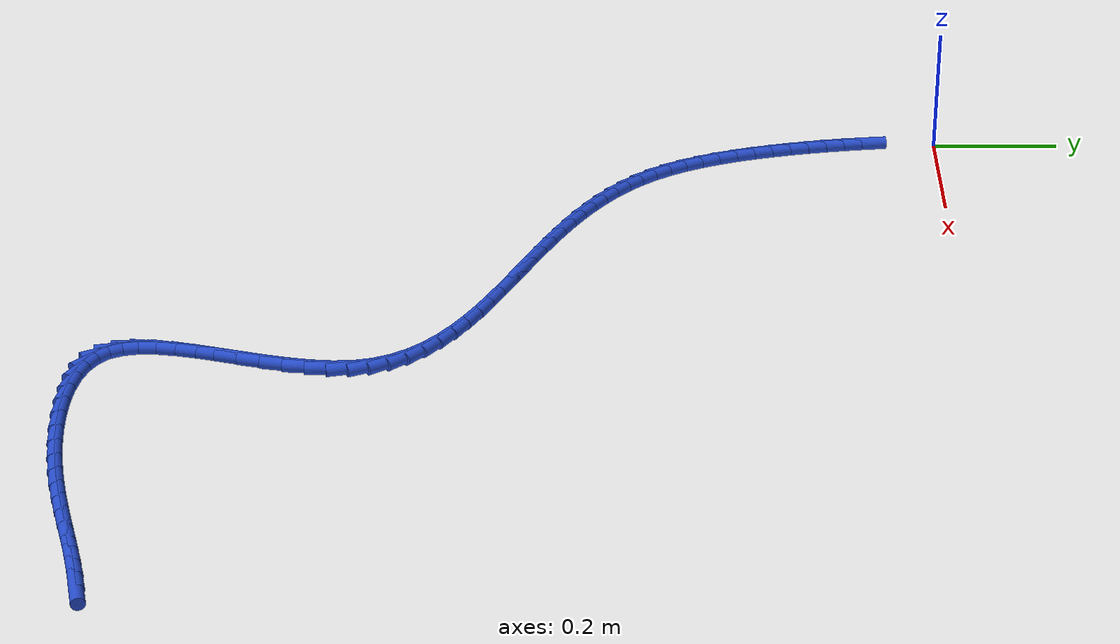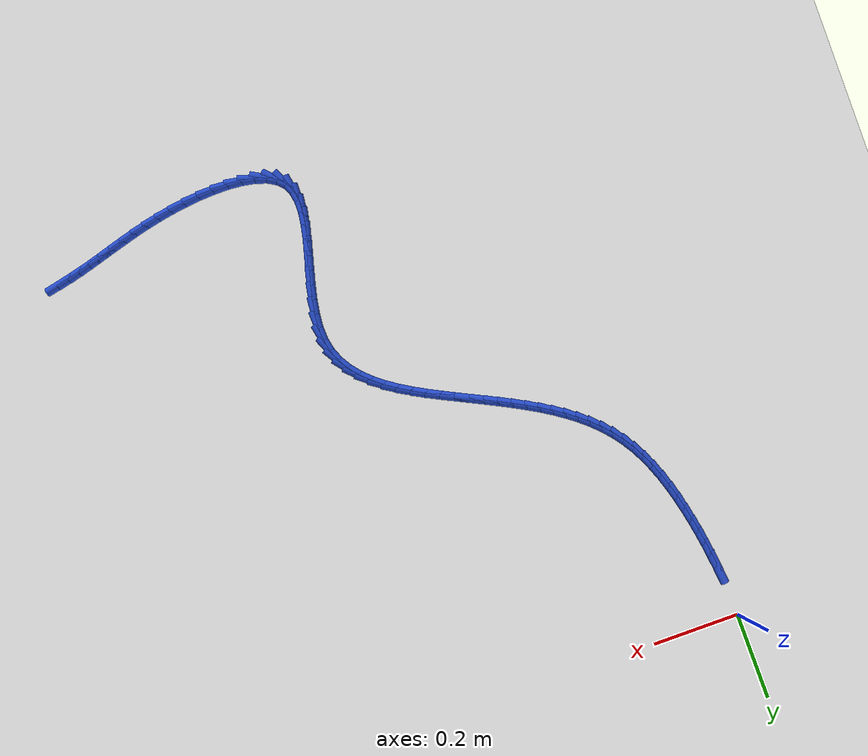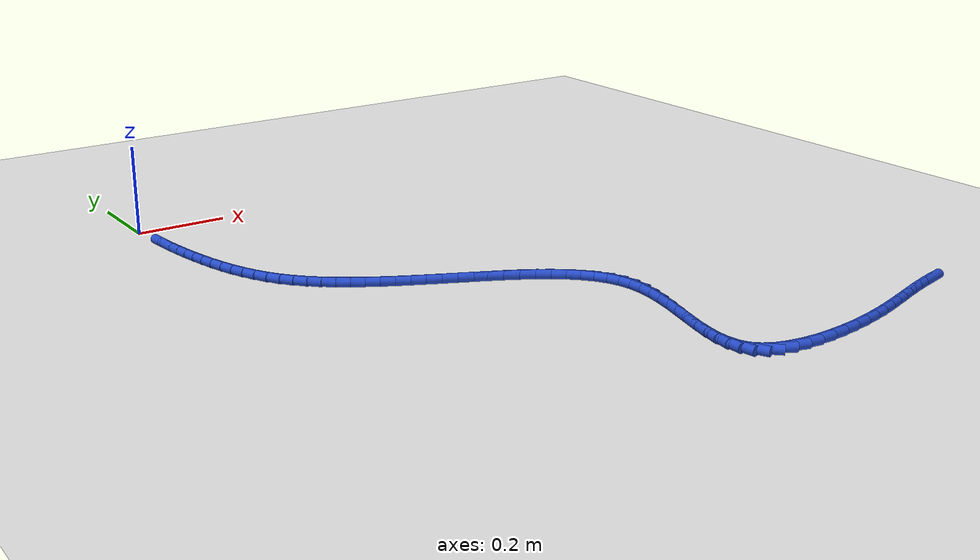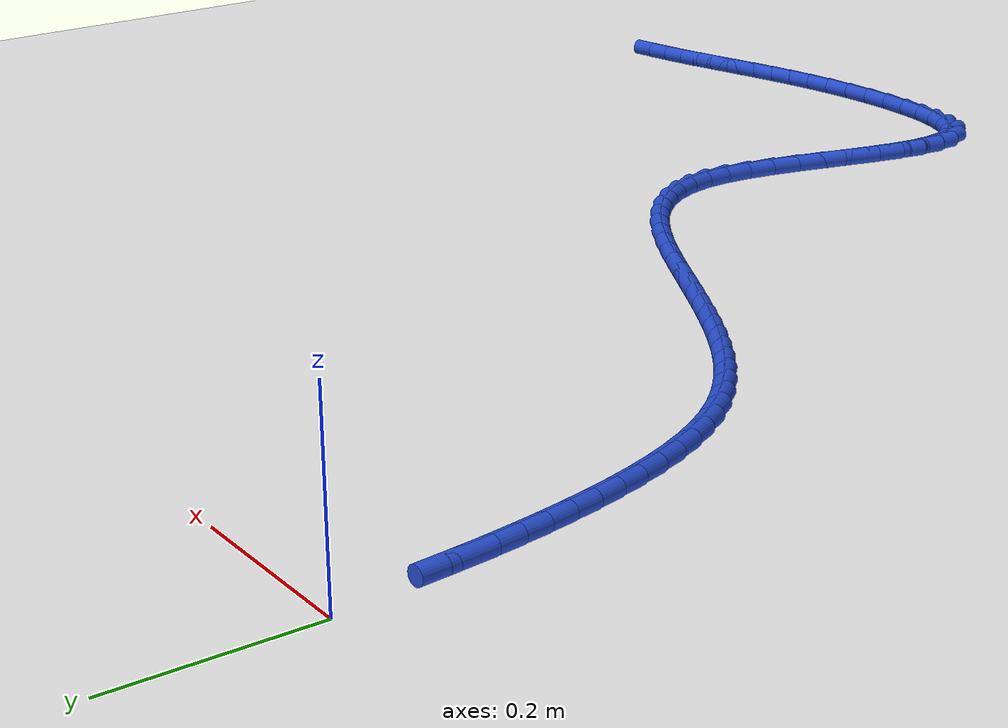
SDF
<sdf version="1.6">
 <world name="default">
  <model name="ground_plane">
   <static>1</static>
   <link name="link">
    <collision name="collision">
     <geometry><plane><normal>0 0 1</normal><size>100 100</size></plane></geometry>
     <surface><friction><ode><mu>100</mu><mu2>50</mu2></ode></friction></surface>
    </collision>
    <visual name="visual">
     <cast_shadows>0</cast_shadows>
     <geometry><plane><normal>0 0 1</normal><size>100 100</size></plane></geometry>
     <material>
      <script><uri>file://media/materials/scripts/gazebo.material</uri><name>Gazebo/WhiteGlow</name></script>
     </material>
    </visual>
   </link>
  </model>
  <model name="line">
   <link name="link_199">
    <pose>1.1821692715643775 -1.2128013313866628 0.01 0 1.57 0.2201277770525201</pose>
    <collision name="collision">
     <geometry><cylinder><radius>0.01</radius><length>0.08</length></cylinder></geometry>
    </collision>
    <visual name="visual">
     <material>
      <script><name>Gazebo/Blue</name><uri>file://media/materials/scripts/gazebo.material</uri></script>
     </material>
     <geometry><cylinder><radius>0.01</radius><length>0.08</length></cylinder></geometry>
    </visual>
   </link>
   <link name="link_200">
    <pose>1.1539759189929162 -1.2191096952944762 0.01 0 1.57 0.24719470398031781</pose>
    <collision name="collision">
     <geometry><cylinder><radius>0.01</radius><length>0.08</length></cylinder></geometry>
    </collision>
    <visual name="visual">
     <material>
      <script><name>Gazebo/Blue</name><uri>file://media/materials/scripts/gazebo.material</uri></script>
     </material>
     <geometry><cylinder><radius>0.01</radius><length>0.08</length></cylinder></geometry>
    </visual>
   </link>
   <link name="link_201">
    <pose>1.1263409924997367 -1.2260835307264892 0.01 0 1.57 0.26916789383108175</pose>
    <collision name="collision">
     <geometry><cylinder><radius>0.01</radius><length>0.08</length></cylinder></geometry>
    </collision>
    <visual name="visual">
     <material>
      <script><name>Gazebo/Blue</name><uri>file://media/materials/scripts/gazebo.material</uri></script>
     </material>
     <geometry><cylinder><radius>0.01</radius><length>0.08</length></cylinder></geometry>
    </visual>
   </link>
   <link name="link_202">
    <pose>1.0990862372689174 -1.2336020956558085 0.01 0 1.57 0.28218826988945567</pose>
    <collision name="collision">
     <geometry><cylinder><radius>0.01</radius><length>0.08</length></cylinder></geometry>
    </collision>
    <visual name="visual">
     <material>
      <script><name>Gazebo/Blue</name><uri>file://media/materials/scripts/gazebo.material</uri></script>
     </material>
     <geometry><cylinder><radius>0.01</radius><length>0.08</length></cylinder></geometry>
    </visual>
   </link>
   <link name="link_203">
    <pose>1.0719372002879433 -1.2414732811179907 0.01 0 1.57 0.2859403524535182</pose>
    <collision name="collision">
     <geometry><cylinder><radius>0.01</radius><length>0.08</length></cylinder></geometry>
    </collision>
    <visual name="visual">
     <material>
      <script><name>Gazebo/Blue</name><uri>file://media/materials/scripts/gazebo.material</uri></script>
     </material>
     <geometry><cylinder><radius>0.01</radius><length>0.08</length></cylinder></geometry>
    </visual>
   </link>
   <link name="link_204">
    <pose>1.0446190854473247 -1.249504723613883 0.01 0 1.57 0.28054074678006746</pose>
    <collision name="collision">
     <geometry><cylinder><radius>0.01</radius><length>0.08</length></cylinder></geometry>
    </collision>
    <visual name="visual">
     <material>
      <script><name>Gazebo/Blue</name><uri>file://media/materials/scripts/gazebo.material</uri></script>
     </material>
     <geometry><cylinder><radius>0.01</radius><length>0.08</length></cylinder></geometry>
    </visual>
   </link>
   <link name="link_205">
    <pose>1.016857096637573 -1.2575040596443317 0.01 0 1.57 0.26649431649426875</pose>
    <collision name="collision">
     <geometry><cylinder><radius>0.01</radius><length>0.08</length></cylinder></geometry>
    </collision>
    <visual name="visual">
     <material>
      <script><name>Gazebo/Blue</name><uri>file://media/materials/scripts/gazebo.material</uri></script>
     </material>
     <geometry><cylinder><radius>0.01</radius><length>0.08</length></cylinder></geometry>
    </visual>
   </link>
   <link name="link_206">
    <pose>0.9883764377492016 -1.2652789257101835 0.01 0 1.57 0.24464338850227182</pose>
    <collision name="collision">
     <geometry><cylinder><radius>0.01</radius><length>0.08</length></cylinder></geometry>
    </collision>
    <visual name="visual">
     <material>
      <script><name>Gazebo/Blue</name><uri>file://media/materials/scripts/gazebo.material</uri></script>
     </material>
     <geometry><cylinder><radius>0.01</radius><length>0.08</length></cylinder></geometry>
    </visual>
   </link>
   <link name="link_207">
    <pose>0.9589023126727204 -1.2726369583122856 0.01 0 1.57 0.2161006967864671</pose>
    <collision name="collision">
     <geometry><cylinder><radius>0.01</radius><length>0.08</length></cylinder></geometry>
    </collision>
    <visual name="visual">
     <material>
      <script><name>Gazebo/Blue</name><uri>file://media/materials/scripts/gazebo.material</uri></script>
     </material>
     <geometry><cylinder><radius>0.01</radius><length>0.08</length></cylinder></geometry>
    </visual>
   </link>
   <link name="link_208">
    <pose>0.9281599252986432 -1.279385793951484 0.01 0 1.57 0.18216699887184445</pose>
    <collision name="collision">
     <geometry><cylinder><radius>0.01</radius><length>0.08</length></cylinder></geometry>
    </collision>
    <visual name="visual">
     <material>
      <script><name>Gazebo/Blue</name><uri>file://media/materials/scripts/gazebo.material</uri></script>
     </material>
     <geometry><cylinder><radius>0.01</radius><length>0.08</length></cylinder></geometry>
    </visual>
   </link>
   <link name="link_209">
    <pose>0.8958744795174799 -1.2853330691286264 0.01 0 1.57 0.1442680930486979</pose>
    <collision name="collision">
     <geometry><cylinder><radius>0.01</radius><length>0.08</length></cylinder></geometry>
    </collision>
    <visual name="visual">
     <material>
      <script><name>Gazebo/Blue</name><uri>file://media/materials/scripts/gazebo.material</uri></script>
     </material>
     <geometry><cylinder><radius>0.01</radius><length>0.08</length></cylinder></geometry>
    </visual>
   </link>
   <link name="link_210">
    <pose>0.8618994252436679 -1.290268876480098 0.01 0 1.57 0.10260798446675674</pose>
    <collision name="collision">
     <geometry><cylinder><radius>0.01</radius><length>0.08</length></cylinder></geometry>
    </collision>
    <visual name="visual">
     <material>
      <script><name>Gazebo/Blue</name><uri>file://media/materials/scripts/gazebo.material</uri></script>
     </material>
     <geometry><cylinder><radius>0.01</radius><length>0.08</length></cylinder></geometry>
    </visual>
   </link>
   <link name="link_211">
    <pose>0.8268853314088604 -1.2938742639516976 0.01 0 1.57 0.05448618135063851</pose>
    <collision name="collision">
     <geometry><cylinder><radius>0.01</radius><length>0.08</length></cylinder></geometry>
    </collision>
    <visual name="visual">
     <material>
      <script><name>Gazebo/Blue</name><uri>file://media/materials/scripts/gazebo.material</uri></script>
     </material>
     <geometry><cylinder><radius>0.01</radius><length>0.08</length></cylinder></geometry>
    </visual>
   </link>
   <link name="link_212">
    <pose>0.7917885580213107 -1.2957884477268267 0.01 0 1.57 -0.004029192139431852</pose>
    <collision name="collision">
     <geometry><cylinder><radius>0.01</radius><length>0.08</length></cylinder></geometry>
    </collision>
    <visual name="visual">
     <material>
      <script><name>Gazebo/Blue</name><uri>file://media/materials/scripts/gazebo.material</uri></script>
     </material>
     <geometry><cylinder><radius>0.01</radius><length>0.08</length></cylinder></geometry>
    </visual>
   </link>
   <link name="link_213">
    <pose>0.7575660929861592 -1.2956505580935296 0.01 0 1.57 -0.07858867767276995</pose>
    <collision name="collision">
     <geometry><cylinder><radius>0.01</radius><length>0.08</length></cylinder></geometry>
    </collision>
    <visual name="visual">
     <material>
      <script><name>Gazebo/Blue</name><uri>file://media/materials/scripts/gazebo.material</uri></script>
     </material>
     <geometry><cylinder><radius>0.01</radius><length>0.08</length></cylinder></geometry>
    </visual>
   </link>
   <link name="link_214">
    <pose>0.7251749242085513 -1.29309972533985 0.01 0 1.57 -0.177966188321672</pose>
    <collision name="collision">
     <geometry><cylinder><radius>0.01</radius><length>0.08</length></cylinder></geometry>
    </collision>
    <visual name="visual">
     <material>
      <script><name>Gazebo/Blue</name><uri>file://media/materials/scripts/gazebo.material</uri></script>
     </material>
     <geometry><cylinder><radius>0.01</radius><length>0.08</length></cylinder></geometry>
    </visual>
   </link>
   <link name="link_215">
    <pose>0.695572039593629 -1.2877750797538337 0.01 0 1.57 -0.3161756257297511</pose>
    <collision name="collision">
     <geometry><cylinder><radius>0.01</radius><length>0.08</length></cylinder></geometry>
    </collision>
    <visual name="visual">
     <material>
      <script><name>Gazebo/Blue</name><uri>file://media/materials/scripts/gazebo.material</uri></script>
     </material>
     <geometry><cylinder><radius>0.01</radius><length>0.08</length></cylinder></geometry>
    </visual>
   </link>
   <link name="link_216">
    <pose>0.6697144270465347 -1.279315751623524 0.01 0 1.57 -0.5143620050007534</pose>
    <collision name="collision">
     <geometry><cylinder><radius>0.01</radius><length>0.08</length></cylinder></geometry>
    </collision>
    <visual name="visual">
     <material>
      <script><name>Gazebo/Blue</name><uri>file://media/materials/scripts/gazebo.material</uri></script>
     </material>
     <geometry><cylinder><radius>0.01</radius><length>0.08</length></cylinder></geometry>
    </visual>
   </link>
   <link name="link_217">
    <pose>0.6485590744724123 -1.2673608712369657 0.01 0 1.57 -0.7953813042618935</pose>
    <collision name="collision">
     <geometry><cylinder><radius>0.01</radius><length>0.08</length></cylinder></geometry>
    </collision>
    <visual name="visual">
     <material>
      <script><name>Gazebo/Blue</name><uri>file://media/materials/scripts/gazebo.material</uri></script>
     </material>
     <geometry><cylinder><radius>0.01</radius><length>0.08</length></cylinder></geometry>
    </visual>
   </link>
   <link name="link_218">
    <pose>0.6330611772397826 -1.2515504078461575 0.01 0 1.57 -1.1277057373504216</pose>
    <collision name="collision">
     <geometry><cylinder><radius>0.01</radius><length>0.08</length></cylinder></geometry>
    </collision>
    <visual name="visual">
     <material>
      <script><name>Gazebo/Blue</name><uri>file://media/materials/scripts/gazebo.material</uri></script>
     </material>
     <geometry><cylinder><radius>0.01</radius><length>0.08</length></cylinder></geometry>
    </visual>
   </link>
   <link name="link_219">
    <pose>0.6236699525578518 -1.2317611445188832 0.01 0 1.57 -1.3996056880809964</pose>
    <collision name="collision">
     <geometry><cylinder><radius>0.01</radius><length>0.08</length></cylinder></geometry>
    </collision>
    <visual name="visual">
     <material>
      <script><name>Gazebo/Blue</name><uri>file://media/materials/scripts/gazebo.material</uri></script>
     </material>
     <geometry><cylinder><radius>0.01</radius><length>0.08</length></cylinder></geometry>
    </visual>
   </link>
   <link name="link_220">
    <pose>0.6196365060069149 -1.2084306185399893 0.01 0 1.57 1.5555421352241205</pose>
    <collision name="collision">
     <geometry><cylinder><radius>0.01</radius><length>0.08</length></cylinder></geometry>
    </collision>
    <visual name="visual">
     <material>
      <script><name>Gazebo/Blue</name><uri>file://media/materials/scripts/gazebo.material</uri></script>
     </material>
     <geometry><cylinder><radius>0.01</radius><length>0.08</length></cylinder></geometry>
    </visual>
   </link>
   <link name="link_221">
    <pose>0.6200385322663863 -1.18207752899228 0.01 0 1.57 1.4359438378572191</pose>
    <collision name="collision">
     <geometry><cylinder><radius>0.01</radius><length>0.08</length></cylinder></geometry>
    </collision>
    <visual name="visual">
     <material>
      <script><name>Gazebo/Blue</name><uri>file://media/materials/scripts/gazebo.material</uri></script>
     </material>
     <geometry><cylinder><radius>0.01</radius><length>0.08</length></cylinder></geometry>
    </visual>
   </link>
   <link name="link_222">
    <pose>0.6239537260156806 -1.1532205749585565 0.01 0 1.57 1.3628972003224316</pose>
    <collision name="collision">
     <geometry><cylinder><radius>0.01</radius><length>0.08</length></cylinder></geometry>
    </collision>
    <visual name="visual">
     <material>
      <script><name>Gazebo/Blue</name><uri>file://media/materials/scripts/gazebo.material</uri></script>
     </material>
     <geometry><cylinder><radius>0.01</radius><length>0.08</length></cylinder></geometry>
    </visual>
   </link>
   <link name="link_223">
    <pose>0.6304597819342121 -1.1223784555216234 0.01 0 1.57 1.3229804085343213</pose>
    <collision name="collision">
     <geometry><cylinder><radius>0.01</radius><length>0.08</length></cylinder></geometry>
    </collision>
    <visual name="visual">
     <material>
      <script><name>Gazebo/Blue</name><uri>file://media/materials/scripts/gazebo.material</uri></script>
     </material>
     <geometry><cylinder><radius>0.01</radius><length>0.08</length></cylinder></geometry>
    </visual>
   </link>
   <link name="link_224">
    <pose>0.6386343947013958 -1.0900698697642817 0.01 0 1.57 1.3087205776724935</pose>
    <collision name="collision">
     <geometry><cylinder><radius>0.01</radius><length>0.08</length></cylinder></geometry>
    </collision>
    <visual name="visual">
     <material>
      <script><name>Gazebo/Blue</name><uri>file://media/materials/scripts/gazebo.material</uri></script>
     </material>
     <geometry><cylinder><radius>0.01</radius><length>0.08</length></cylinder></geometry>
    </visual>
   </link>
   <link name="link_225">
    <pose>0.6475552589966456 -1.0568135167693364 0.01 0 1.57 1.3168008861898395</pose>
    <collision name="collision">
     <geometry><cylinder><radius>0.01</radius><length>0.08</length></cylinder></geometry>
    </collision>
    <visual name="visual">
     <material>
      <script><name>Gazebo/Blue</name><uri>file://media/materials/scripts/gazebo.material</uri></script>
     </material>
     <geometry><cylinder><radius>0.01</radius><length>0.08</length></cylinder></geometry>
    </visual>
   </link>
   <link name="link_226">
    <pose>0.656300069499376 -1.0231280956195896 0.01 0 1.57 1.347007147416832</pose>
    <collision name="collision">
     <geometry><cylinder><radius>0.01</radius><length>0.08</length></cylinder></geometry>
    </collision>
    <visual name="visual">
     <material>
      <script><name>Gazebo/Blue</name><uri>file://media/materials/scripts/gazebo.material</uri></script>
     </material>
     <geometry><cylinder><radius>0.01</radius><length>0.08</length></cylinder></geometry>
    </visual>
   </link>
   <link name="link_227">
    <pose>0.6639465208890022 -0.9895323053978428 0.01 0 1.57 1.401878276624571</pose>
    <collision name="collision">
     <geometry><cylinder><radius>0.01</radius><length>0.08</length></cylinder></geometry>
    </collision>
    <visual name="visual">
     <material>
      <script><name>Gazebo/Blue</name><uri>file://media/materials/scripts/gazebo.material</uri></script>
     </material>
     <geometry><cylinder><radius>0.01</radius><length>0.08</length></cylinder></geometry>
    </visual>
   </link>
   <link name="link_228">
    <pose>0.6695723078449378 -0.9565448451869007 0.01 0 1.57 1.4867892032174619</pose>
    <collision name="collision">
     <geometry><cylinder><radius>0.01</radius><length>0.08</length></cylinder></geometry>
    </collision>
    <visual name="visual">
     <material>
      <script><name>Gazebo/Blue</name><uri>file://media/materials/scripts/gazebo.material</uri></script>
     </material>
     <geometry><cylinder><radius>0.01</radius><length>0.08</length></cylinder></geometry>
    </visual>
   </link>
   <link name="link_229">
    <pose>0.6722551250465978 -0.9246844140695643 0.01 0 1.57 -1.5316811066221465</pose>
    <collision name="collision">
     <geometry><cylinder><radius>0.01</radius><length>0.08</length></cylinder></geometry>
    </collision>
    <visual name="visual">
     <material>
      <script><name>Gazebo/Blue</name><uri>file://media/materials/scripts/gazebo.material</uri></script>
     </material>
     <geometry><cylinder><radius>0.01</radius><length>0.08</length></cylinder></geometry>
    </visual>
   </link>
   <link name="link_230">
    <pose>0.6710726671733964 -0.8944697111286388 0.01 0 1.57 -1.364358748425208</pose>
    <collision name="collision">
     <geometry><cylinder><radius>0.01</radius><length>0.08</length></cylinder></geometry>
    </collision>
    <visual name="visual">
     <material>
      <script><name>Gazebo/Blue</name><uri>file://media/materials/scripts/gazebo.material</uri></script>
     </material>
     <geometry><cylinder><radius>0.01</radius><length>0.08</length></cylinder></geometry>
    </visual>
   </link>
   <link name="link_231">
    <pose>0.6651893857420503 -0.8663766276800129 0.01 0 1.57 -1.1836446415996034</pose>
    <collision name="collision">
     <geometry><cylinder><radius>0.01</radius><length>0.08</length></cylinder></geometry>
    </collision>
    <visual name="visual">
     <material>
      <script><name>Gazebo/Blue</name><uri>file://media/materials/scripts/gazebo.material</uri></script>
     </material>
     <geometry><cylinder><radius>0.01</radius><length>0.08</length></cylinder></geometry>
    </visual>
   </link>
   <link name="link_232">
    <pose>0.6546225280970854 -0.8404602664751725 0.01 0 1.57 -1.0183296807286444</pose>
    <collision name="collision">
     <geometry><cylinder><radius>0.01</radius><length>0.08</length></cylinder></geometry>
    </collision>
    <visual name="visual">
     <material>
      <script><name>Gazebo/Blue</name><uri>file://media/materials/scripts/gazebo.material</uri></script>
     </material>
     <geometry><cylinder><radius>0.01</radius><length>0.08</length></cylinder></geometry>
    </visual>
   </link>
   <link name="link_233">
    <pose>0.6398736013544526 -0.81653678564677 0.01 0 1.57 -0.8762466847785383</pose>
    <collision name="collision">
     <geometry><cylinder><radius>0.01</radius><length>0.08</length></cylinder></geometry>
    </collision>
    <visual name="visual">
     <material>
      <script><name>Gazebo/Blue</name><uri>file://media/materials/scripts/gazebo.material</uri></script>
     </material>
     <geometry><cylinder><radius>0.01</radius><length>0.08</length></cylinder></geometry>
    </visual>
   </link>
   <link name="link_234">
    <pose>0.6214496788732724 -0.7944195968183938 0.01 0 1.57 -0.7594031394397911</pose>
    <collision name="collision">
     <geometry><cylinder><radius>0.01</radius><length>0.08</length></cylinder></geometry>
    </collision>
    <visual name="visual">
     <material>
      <script><name>Gazebo/Blue</name><uri>file://media/materials/scripts/gazebo.material</uri></script>
     </material>
     <geometry><cylinder><radius>0.01</radius><length>0.08</length></cylinder></geometry>
    </visual>
   </link>
   <link name="link_235">
    <pose>0.599857834012665 -0.773922111613631 0.01 0 1.57 -0.6661905348699536</pose>
    <collision name="collision">
     <geometry><cylinder><radius>0.01</radius><length>0.08</length></cylinder></geometry>
    </collision>
    <visual name="visual">
     <material>
      <script><name>Gazebo/Blue</name><uri>file://media/materials/scripts/gazebo.material</uri></script>
     </material>
     <geometry><cylinder><radius>0.01</radius><length>0.08</length></cylinder></geometry>
    </visual>
   </link>
   <link name="link_236">
    <pose>0.5756051401317497 -0.7548577416560682 0.01 0 1.57 -0.5935799228214858</pose>
    <collision name="collision">
     <geometry><cylinder><radius>0.01</radius><length>0.08</length></cylinder></geometry>
    </collision>
    <visual name="visual">
     <material>
      <script><name>Gazebo/Blue</name><uri>file://media/materials/scripts/gazebo.material</uri></script>
     </material>
     <geometry><cylinder><radius>0.01</radius><length>0.08</length></cylinder></geometry>
    </visual>
   </link>
   <link name="link_237">
    <pose>0.5491986705896483 -0.7370398985692942 0.01 0 1.57 -0.5384776878709174</pose>
    <collision name="collision">
     <geometry><cylinder><radius>0.01</radius><length>0.08</length></cylinder></geometry>
    </collision>
    <visual name="visual">
     <material>
      <script><name>Gazebo/Blue</name><uri>file://media/materials/scripts/gazebo.material</uri></script>
     </material>
     <geometry><cylinder><radius>0.01</radius><length>0.08</length></cylinder></geometry>
    </visual>
   </link>
   <link name="link_238">
    <pose>0.5211454987454792 -0.7202819939768949 0.01 0 1.57 -0.4983220422260558</pose>
    <collision name="collision">
     <geometry><cylinder><radius>0.01</radius><length>0.08</length></cylinder></geometry>
    </collision>
    <visual name="visual">
     <material>
      <script><name>Gazebo/Blue</name><uri>file://media/materials/scripts/gazebo.material</uri></script>
     </material>
     <geometry><cylinder><radius>0.01</radius><length>0.08</length></cylinder></geometry>
    </visual>
   </link>
   <link name="link_239">
    <pose>0.49195269795836477 -0.704397439502459 0.01 0 1.57 -0.4712659049098077</pose>
    <collision name="collision">
     <geometry><cylinder><radius>0.01</radius><length>0.08</length></cylinder></geometry>
    </collision>
    <visual name="visual">
     <material>
      <script><name>Gazebo/Blue</name><uri>file://media/materials/scripts/gazebo.material</uri></script>
     </material>
     <geometry><cylinder><radius>0.01</radius><length>0.08</length></cylinder></geometry>
    </visual>
   </link>
   <link name="link_240">
    <pose>0.46212734158742325 -0.6891996467695731 0.01 0 1.57 -0.45619904711889</pose>
    <collision name="collision">
     <geometry><cylinder><radius>0.01</radius><length>0.08</length></cylinder></geometry>
    </collision>
    <visual name="visual">
     <material>
      <script><name>Gazebo/Blue</name><uri>file://media/materials/scripts/gazebo.material</uri></script>
     </material>
     <geometry><cylinder><radius>0.01</radius><length>0.08</length></cylinder></geometry>
    </visual>
   </link>
   <link name="link_241">
    <pose>0.43217644454663734 -0.6745020325419535 0.01 0 1.57 -0.45137541864027947</pose>
    <collision name="collision">
     <geometry><cylinder><radius>0.01</radius><length>0.08</length></cylinder></geometry>
    </collision>
    <visual name="visual">
     <material>
      <script><name>Gazebo/Blue</name><uri>file://media/materials/scripts/gazebo.material</uri></script>
     </material>
     <geometry><cylinder><radius>0.01</radius><length>0.08</length></cylinder></geometry>
    </visual>
   </link>
   <link name="link_242">
    <pose>0.4025194268019845 -0.6601257173764672 0.01 0 1.57 -0.45282667855151804</pose>
    <collision name="collision">
     <geometry><cylinder><radius>0.01</radius><length>0.08</length></cylinder></geometry>
    </collision>
    <visual name="visual">
     <material>
      <script><name>Gazebo/Blue</name><uri>file://media/materials/scripts/gazebo.material</uri></script>
     </material>
     <geometry><cylinder><radius>0.01</radius><length>0.08</length></cylinder></geometry>
    </visual>
   </link>
   <link name="link_243">
    <pose>0.37331209879828564 -0.6459150057380749 0.01 0 1.57 -0.4600350531546274</pose>
    <collision name="collision">
     <geometry><cylinder><radius>0.01</radius><length>0.08</length></cylinder></geometry>
    </collision>
    <visual name="visual">
     <material>
      <script><name>Gazebo/Blue</name><uri>file://media/materials/scripts/gazebo.material</uri></script>
     </material>
     <geometry><cylinder><radius>0.01</radius><length>0.08</length></cylinder></geometry>
    </visual>
   </link>
   <link name="link_244">
    <pose>0.34466088366963243 -0.6317185456028057 0.01 0 1.57 -0.4732964821596034</pose>
    <collision name="collision">
     <geometry><cylinder><radius>0.01</radius><length>0.08</length></cylinder></geometry>
    </collision>
    <visual name="visual">
     <material>
      <script><name>Gazebo/Blue</name><uri>file://media/materials/scripts/gazebo.material</uri></script>
     </material>
     <geometry><cylinder><radius>0.01</radius><length>0.08</length></cylinder></geometry>
    </visual>
   </link>
   <link name="link_245">
    <pose>0.31667220455011963 -0.6173849849466886 0.01 0 1.57 -0.4929508872856297</pose>
    <collision name="collision">
     <geometry><cylinder><radius>0.01</radius><length>0.08</length></cylinder></geometry>
    </collision>
    <visual name="visual">
     <material>
      <script><name>Gazebo/Blue</name><uri>file://media/materials/scripts/gazebo.material</uri></script>
     </material>
     <geometry><cylinder><radius>0.01</radius><length>0.08</length></cylinder></geometry>
    </visual>
   </link>
   <link name="link_246">
    <pose>0.2894524845738394 -0.6027629717457522 0.01 0 1.57 -0.5193724451816999</pose>
    <collision name="collision">
     <geometry><cylinder><radius>0.01</radius><length>0.08</length></cylinder></geometry>
    </collision>
    <visual name="visual">
     <material>
      <script><name>Gazebo/Blue</name><uri>file://media/materials/scripts/gazebo.material</uri></script>
     </material>
     <geometry><cylinder><radius>0.01</radius><length>0.08</length></cylinder></geometry>
    </visual>
   </link>
   <link name="link_247">
    <pose>0.26310814687488415 -0.5877011539760254 0.01 0 1.57 -0.5529483670038412</pose>
    <collision name="collision">
     <geometry><cylinder><radius>0.01</radius><length>0.08</length></cylinder></geometry>
    </collision>
    <visual name="visual">
     <material>
      <script><name>Gazebo/Blue</name><uri>file://media/materials/scripts/gazebo.material</uri></script>
     </material>
     <geometry><cylinder><radius>0.01</radius><length>0.08</length></cylinder></geometry>
    </visual>
   </link>
   <link name="link_248">
    <pose>0.2377456145873485 -0.5720481796135374 0.01 0 1.57 -0.5940419017525833</pose>
    <collision name="collision">
     <geometry><cylinder><radius>0.01</radius><length>0.08</length></cylinder></geometry>
    </collision>
    <visual name="visual">
     <material>
      <script><name>Gazebo/Blue</name><uri>file://media/materials/scripts/gazebo.material</uri></script>
     </material>
     <geometry><cylinder><radius>0.01</radius><length>0.08</length></cylinder></geometry>
    </visual>
   </link>
   <link name="link_249">
    <pose>0.21347131084532397 -0.5556526966343164 0.01 0 1.57 -0.6429353025621518</pose>
    <collision name="collision">
     <geometry><cylinder><radius>0.01</radius><length>0.08</length></cylinder></geometry>
    </collision>
    <visual name="visual">
     <material>
      <script><name>Gazebo/Blue</name><uri>file://media/materials/scripts/gazebo.material</uri></script>
     </material>
     <geometry><cylinder><radius>0.01</radius><length>0.08</length></cylinder></geometry>
    </visual>
   </link>
   <link name="link_250">
    <pose>0.19039165878290523 -0.5383633530143923 0.01 0 1.57 -0.6997505135576859</pose>
    <collision name="collision">
     <geometry><cylinder><radius>0.01</radius><length>0.08</length></cylinder></geometry>
    </collision>
    <visual name="visual">
     <material>
      <script><name>Gazebo/Blue</name><uri>file://media/materials/scripts/gazebo.material</uri></script>
     </material>
     <geometry><cylinder><radius>0.01</radius><length>0.08</length></cylinder></geometry>
    </visual>
   </link>
   <link name="link_251">
    <pose>0.1686130815341839 -0.5200287967297927 0.01 0 1.57 -0.7643508455222651</pose>
    <collision name="collision">
     <geometry><cylinder><radius>0.01</radius><length>0.08</length></cylinder></geometry>
    </collision>
    <visual name="visual">
     <material>
      <script><name>Gazebo/Blue</name><uri>file://media/materials/scripts/gazebo.material</uri></script>
     </material>
     <geometry><cylinder><radius>0.01</radius><length>0.08</length></cylinder></geometry>
    </visual>
   </link>
   <link name="link_252">
    <pose>0.1482420022332544 -0.5004976757565478 0.01 0 1.57 -0.8362368816167084</pose>
    <collision name="collision">
     <geometry><cylinder><radius>0.01</radius><length>0.08</length></cylinder></geometry>
    </collision>
    <visual name="visual">
     <material>
      <script><name>Gazebo/Blue</name><uri>file://media/materials/scripts/gazebo.material</uri></script>
     </material>
     <geometry><cylinder><radius>0.01</radius><length>0.08</length></cylinder></geometry>
    </visual>
   </link>
   <link name="link_253">
    <pose>0.12938484401420866 -0.4796186380706854 0.01 0 1.57 -0.9144628274112662</pose>
    <collision name="collision">
     <geometry><cylinder><radius>0.01</radius><length>0.08</length></cylinder></geometry>
    </collision>
    <visual name="visual">
     <material>
      <script><name>Gazebo/Blue</name><uri>file://media/materials/scripts/gazebo.material</uri></script>
     </material>
     <geometry><cylinder><radius>0.01</radius><length>0.08</length></cylinder></geometry>
    </visual>
   </link>
   <link name="link_254">
    <pose>0.11214803001114083 -0.45724033164823524 0.01 0 1.57 -0.9969759173520392</pose>
    <collision name="collision">
     <geometry><cylinder><radius>0.01</radius><length>0.08</length></cylinder></geometry>
    </collision>
    <visual name="visual">
     <material>
      <script><name>Gazebo/Blue</name><uri>file://media/materials/scripts/gazebo.material</uri></script>
     </material>
     <geometry><cylinder><radius>0.01</radius><length>0.08</length></cylinder></geometry>
    </visual>
   </link>
   <link name="link_255">
    <pose>0.0966277699338803 -0.43322898072425864 0.01 0 1.57 -1.0744646849520612</pose>
    <collision name="collision">
     <geometry><cylinder><radius>0.01</radius><length>0.08</length></cylinder></geometry>
    </collision>
    <visual name="visual">
     <material>
      <script><name>Gazebo/Blue</name><uri>file://media/materials/scripts/gazebo.material</uri></script>
     </material>
     <geometry><cylinder><radius>0.01</radius><length>0.08</length></cylinder></geometry>
    </visual>
   </link>
   <link name="link_256">
    <pose>0.08278950305516516 -0.4076758520873373 0.01 0 1.57 -1.1417737351419395</pose>
    <collision name="collision">
     <geometry><cylinder><radius>0.01</radius><length>0.08</length></cylinder></geometry>
    </collision>
    <visual name="visual">
     <material>
      <script><name>Gazebo/Blue</name><uri>file://media/materials/scripts/gazebo.material</uri></script>
     </material>
     <geometry><cylinder><radius>0.01</radius><length>0.08</length></cylinder></geometry>
    </visual>
   </link>
   <link name="link_257">
    <pose>0.07050820802444781 -0.3808278860108938 0.01 0 1.57 -1.1997814418967414</pose>
    <collision name="collision">
     <geometry><cylinder><radius>0.01</radius><length>0.08</length></cylinder></geometry>
    </collision>
    <visual name="visual">
     <material>
      <script><name>Gazebo/Blue</name><uri>file://media/materials/scripts/gazebo.material</uri></script>
     </material>
     <geometry><cylinder><radius>0.01</radius><length>0.08</length></cylinder></geometry>
    </visual>
   </link>
   <link name="link_258">
    <pose>0.05965705684342764 -0.35293513182444 0.01 0 1.57 -1.2495058375631103</pose>
    <collision name="collision">
     <geometry><cylinder><radius>0.01</radius><length>0.08</length></cylinder></geometry>
    </collision>
    <visual name="visual">
     <material>
      <script><name>Gazebo/Blue</name><uri>file://media/materials/scripts/gazebo.material</uri></script>
     </material>
     <geometry><cylinder><radius>0.01</radius><length>0.08</length></cylinder></geometry>
    </visual>
   </link>
   <link name="link_259">
    <pose>0.05010922151380487 -0.32424763885748986 0.01 0 1.57 -1.2918865186254558</pose>
    <collision name="collision">
     <geometry><cylinder><radius>0.01</radius><length>0.08</length></cylinder></geometry>
    </collision>
    <visual name="visual">
     <material>
      <script><name>Gazebo/Blue</name><uri>file://media/materials/scripts/gazebo.material</uri></script>
     </material>
     <geometry><cylinder><radius>0.01</radius><length>0.08</length></cylinder></geometry>
    </visual>
   </link>
   <link name="link_260">
    <pose>0.04173787403727861 -0.295015456439554 0.01 0 1.57 -1.3277316692158543</pose>
    <collision name="collision">
     <geometry><cylinder><radius>0.01</radius><length>0.08</length></cylinder></geometry>
    </collision>
    <visual name="visual">
     <material>
      <script><name>Gazebo/Blue</name><uri>file://media/materials/scripts/gazebo.material</uri></script>
     </material>
     <geometry><cylinder><radius>0.01</radius><length>0.08</length></cylinder></geometry>
    </visual>
   </link>
   <link name="link_261">
    <pose>0.034416186415549 -0.2654886339001468 0.01 0 1.57 -1.357695267646857</pose>
    <collision name="collision">
     <geometry><cylinder><radius>0.01</radius><length>0.08</length></cylinder></geometry>
    </collision>
    <visual name="visual">
     <material>
      <script><name>Gazebo/Blue</name><uri>file://media/materials/scripts/gazebo.material</uri></script>
     </material>
     <geometry><cylinder><radius>0.01</radius><length>0.08</length></cylinder></geometry>
    </visual>
   </link>
   <link name="link_262">
    <pose>0.028017330650315243 -0.23591722056877887 0.01 0 1.57 -1.3826643738916626</pose>
    <collision name="collision">
     <geometry><cylinder><radius>0.01</radius><length>0.08</length></cylinder></geometry>
    </collision>
    <visual name="visual">
     <material>
      <script><name>Gazebo/Blue</name><uri>file://media/materials/scripts/gazebo.material</uri></script>
     </material>
     <geometry><cylinder><radius>0.01</radius><length>0.08</length></cylinder></geometry>
    </visual>
   </link>
   <link name="link_263">
    <pose>0.022420445315134412 -0.20651924988542456 0.01 0 1.57 -1.405546153724552</pose>
    <collision name="collision">
     <geometry><cylinder><radius>0.01</radius><length>0.08</length></cylinder></geometry>
    </collision>
    <visual name="visual">
     <material>
      <script><name>Gazebo/Blue</name><uri>file://media/materials/scripts/gazebo.material</uri></script>
     </material>
     <geometry><cylinder><radius>0.01</radius><length>0.08</length></cylinder></geometry>
    </visual>
   </link>
   <link name="link_264">
    <pose>0.017546009337834602 -0.17729092804191052 0.01 0 1.57 -1.4272591564416908</pose>
    <collision name="collision">
     <geometry><cylinder><radius>0.01</radius><length>0.08</length></cylinder></geometry>
    </collision>
    <visual name="visual">
     <material>
      <script><name>Gazebo/Blue</name><uri>file://media/materials/scripts/gazebo.material</uri></script>
     </material>
     <geometry><cylinder><radius>0.01</radius><length>0.08</length></cylinder></geometry>
    </visual>
   </link>
   <link name="link_265">
    <pose>0.013332004356004736 -0.14813454384572025 0.01 0 1.57 -1.4475306829242858</pose>
    <collision name="collision">
     <geometry><cylinder><radius>0.01</radius><length>0.08</length></cylinder></geometry>
    </collision>
    <visual name="visual">
     <material>
      <script><name>Gazebo/Blue</name><uri>file://media/materials/scripts/gazebo.material</uri></script>
     </material>
     <geometry><cylinder><radius>0.01</radius><length>0.08</length></cylinder></geometry>
    </visual>
   </link>
   <link name="link_266">
    <pose>0.009716474815961636 -0.11895204908043465 0.01 0 1.57 -1.4661185475901246</pose>
    <collision name="collision">
     <geometry><cylinder><radius>0.01</radius><length>0.08</length></cylinder></geometry>
    </collision>
    <visual name="visual">
     <material>
      <script><name>Gazebo/Blue</name><uri>file://media/materials/scripts/gazebo.material</uri></script>
     </material>
     <geometry><cylinder><radius>0.01</radius><length>0.08</length></cylinder></geometry>
    </visual>
   </link>
  </model>
 </world>
</sdf>
